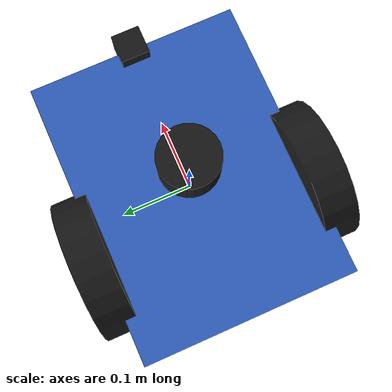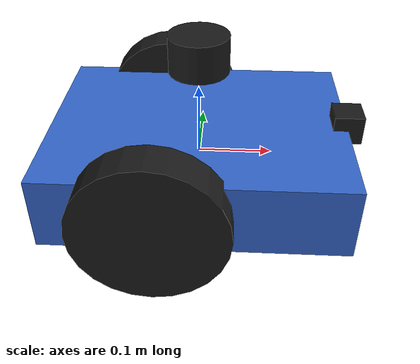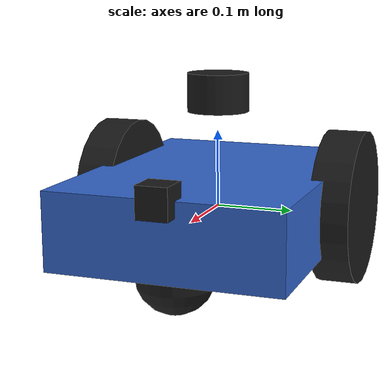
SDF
<?xml version="1.0" ?>
<sdf version="1.10">
  <model name="reference_robot">
    <link name="base_link">
      <inertial>
        <mass>2.0</mass>
        <inertia>
          <ixx>0.0167</ixx><ixy>0</ixy><ixz>0</ixz>
          <iyy>0.0283</iyy><iyz>0</iyz><izz>0.0417</izz>
        </inertia>
      </inertial>

      <collision name="chassis_collision">
        <geometry><box><size>0.4 0.3 0.1</size></box></geometry>
      </collision>
      <visual name="chassis_visual">
        <geometry><box><size>0.4 0.3 0.1</size></box></geometry>
        <material><ambient>0.2 0.4 0.8 1</ambient><diffuse>0.2 0.4 0.8 1</diffuse></material>
      </visual>

      <collision name="caster_collision">
        <pose>0.15 0 -0.05 0 0 0</pose>
        <geometry><sphere><radius>0.05</radius></sphere></geometry>
        <surface><friction><ode><mu>0</mu><mu2>0</mu2></ode></friction></surface>
      </collision>
      <visual name="caster_visual">
        <pose>0.15 0 -0.05 0 0 0</pose>
        <geometry><sphere><radius>0.05</radius></sphere></geometry>
        <material><ambient>0.1 0.1 0.1 1</ambient><diffuse>0.1 0.1 0.1 1</diffuse></material>
      </visual>

      <!-- Sensor mounts (visual cues). -->
      <visual name="camera_mount">
        <pose>0.2 0 0.05 0 0 0</pose>
        <geometry><box><size>0.04 0.04 0.04</size></box></geometry>
        <material><ambient>0.1 0.1 0.1 1</ambient><diffuse>0.1 0.1 0.1 1</diffuse></material>
      </visual>
      <visual name="lidar_mount">
        <pose>0 0 0.15 0 0 0</pose>
        <geometry><cylinder><radius>0.04</radius><length>0.05</length></cylinder></geometry>
        <material><ambient>0.1 0.1 0.1 1</ambient><diffuse>0.1 0.1 0.1 1</diffuse></material>
      </visual>

      <sensor name="camera" type="camera">
        <pose>0.22 0 0.05 0 0 0</pose>
        <topic>camera</topic>
        <update_rate>15</update_rate>
        <always_on>1</always_on>
        <visualize>true</visualize>
        <camera>
          <horizontal_fov>1.047</horizontal_fov>
          <image><width>640</width><height>480</height><format>R8G8B8</format></image>
          <clip><near>0.1</near><far>100</far></clip>
        </camera>
      </sensor>

      <sensor name="lidar" type="gpu_lidar">
        <pose>0 0 0.18 0 0 0</pose>
        <topic>scan</topic>
        <update_rate>10</update_rate>
        <always_on>1</always_on>
        <visualize>true</visualize>
        <lidar>
          <scan>
            <horizontal>
              <samples>360</samples>
              <resolution>1</resolution>
              <min_angle>-3.14159</min_angle>
              <max_angle>3.14159</max_angle>
            </horizontal>
            <vertical>
              <samples>1</samples>
              <resolution>1</resolution>
              <min_angle>0</min_angle>
              <max_angle>0</max_angle>
            </vertical>
          </scan>
          <range>
            <min>0.12</min>
            <max>12.0</max>
            <resolution>0.01</resolution>
          </range>
        </lidar>
      </sensor>

      <sensor name="imu" type="imu">
        <topic>imu</topic>
        <update_rate>50</update_rate>
        <always_on>1</always_on>
        <visualize>true</visualize>
      </sensor>
    </link>

    <link name="left_wheel">
      <pose>-0.05 0.16 0 1.5708 0 0</pose>
      <inertial>
        <mass>0.2</mass>
        <inertia>
          <ixx>0.00054</ixx><ixy>0</ixy><ixz>0</ixz>
          <iyy>0.00054</iyy><iyz>0</iyz><izz>0.001</izz>
        </inertia>
      </inertial>
      <collision name="collision">
        <geometry><cylinder><radius>0.1</radius><length>0.05</length></cylinder></geometry>
        <surface><friction><ode><mu>1.0</mu><mu2>1.0</mu2></ode></friction></surface>
      </collision>
      <visual name="visual">
        <geometry><cylinder><radius>0.1</radius><length>0.05</length></cylinder></geometry>
        <material><ambient>0.1 0.1 0.1 1</ambient><diffuse>0.1 0.1 0.1 1</diffuse></material>
      </visual>
    </link>

    <link name="right_wheel">
      <pose>-0.05 -0.16 0 1.5708 0 0</pose>
      <inertial>
        <mass>0.2</mass>
        <inertia>
          <ixx>0.00054</ixx><ixy>0</ixy><ixz>0</ixz>
          <iyy>0.00054</iyy><iyz>0</iyz><izz>0.001</izz>
        </inertia>
      </inertial>
      <collision name="collision">
        <geometry><cylinder><radius>0.1</radius><length>0.05</length></cylinder></geometry>
        <surface><friction><ode><mu>1.0</mu><mu2>1.0</mu2></ode></friction></surface>
      </collision>
      <visual name="visual">
        <geometry><cylinder><radius>0.1</radius><length>0.05</length></cylinder></geometry>
        <material><ambient>0.1 0.1 0.1 1</ambient><diffuse>0.1 0.1 0.1 1</diffuse></material>
      </visual>
    </link>

    <joint name="left_wheel_joint" type="revolute">
      <parent>base_link</parent>
      <child>left_wheel</child>
      <axis>
        <xyz expressed_in="__model__">0 1 0</xyz>
        <limit><lower>-1e16</lower><upper>1e16</upper></limit>
      </axis>
    </joint>

    <joint name="right_wheel_joint" type="revolute">
      <parent>base_link</parent>
      <child>right_wheel</child>
      <axis>
        <xyz expressed_in="__model__">0 1 0</xyz>
        <limit><lower>-1e16</lower><upper>1e16</upper></limit>
      </axis>
    </joint>

    <plugin filename="gz-sim-diff-drive-system" name="gz::sim::systems::DiffDrive">
      <left_joint>left_wheel_joint</left_joint>
      <right_joint>right_wheel_joint</right_joint>
      <wheel_separation>0.32</wheel_separation>
      <wheel_radius>0.1</wheel_radius>
      <odom_publish_frequency>30</odom_publish_frequency>
      <topic>cmd_vel</topic>
      <odom_topic>odom</odom_topic>
      <tf_topic>tf</tf_topic>
      <frame_id>odom</frame_id>
      <child_frame_id>base_link</child_frame_id>
    </plugin>
  </model>
</sdf>
